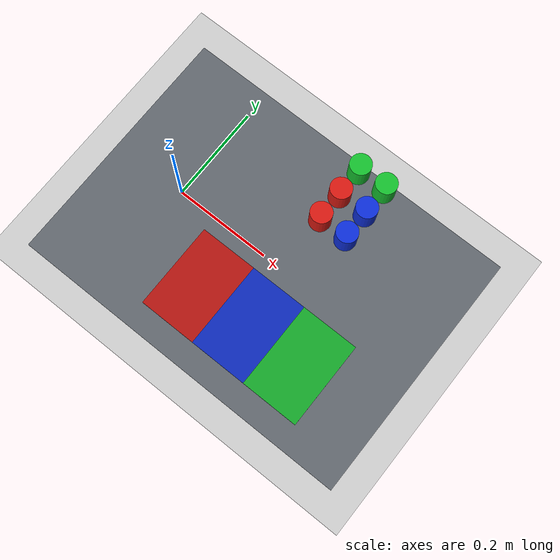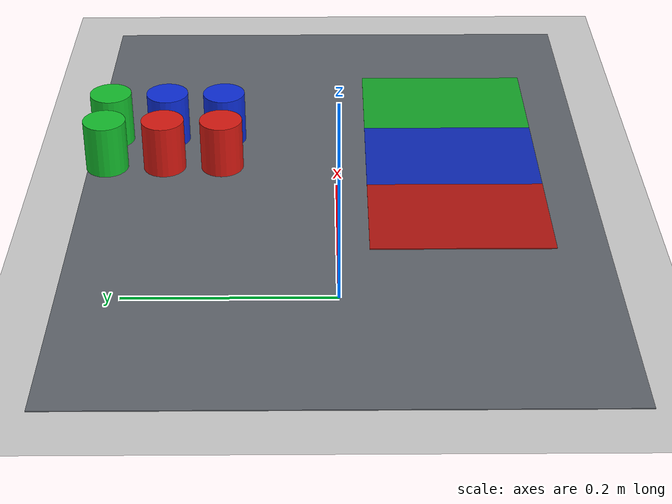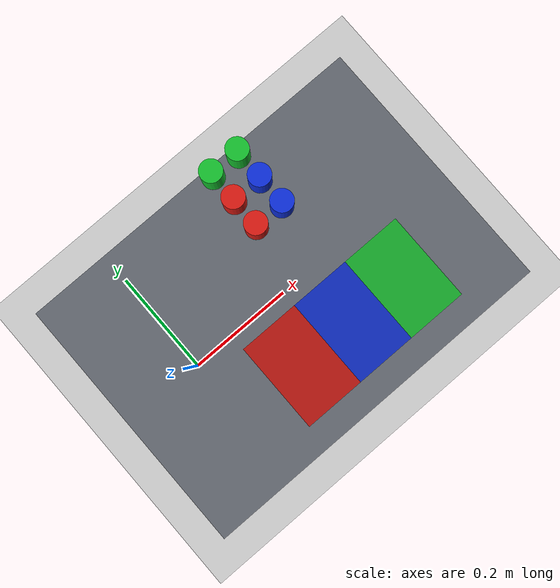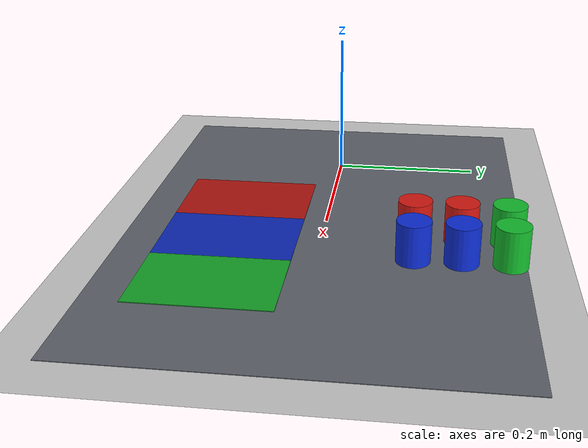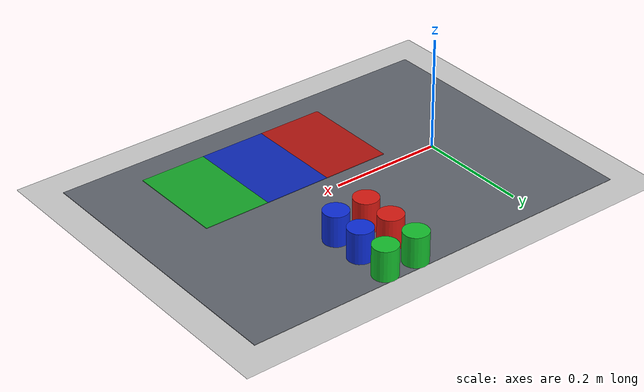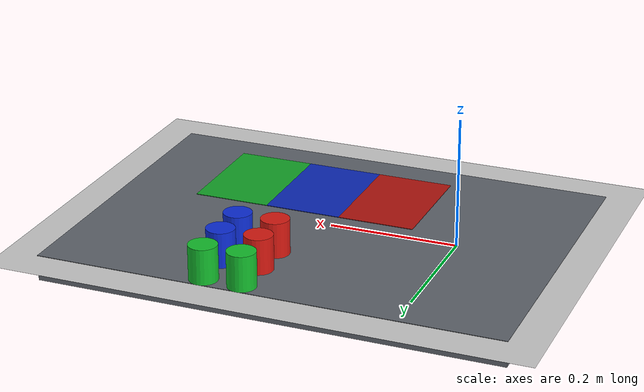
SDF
<?xml version="1.0" ?>
<sdf version="1.6">
  <world name="sorting_desktop_world">
    <physics name="sorting_physics" type="ode">
      <max_step_size>0.001</max_step_size>
      <real_time_update_rate>1000</real_time_update_rate>
      <ode>
        <solver><type>quick</type><iters>100</iters><sor>1.3</sor></solver>
        <constraints><cfm>0.0</cfm><erp>0.2</erp><contact_max_correcting_vel>0.1</contact_max_correcting_vel><contact_surface_layer>0.001</contact_surface_layer></constraints>
      </ode>
    </physics>

    <plugin name="gazebo_ros_state" filename="libgazebo_ros_state.so">
      <ros><namespace>/gazebo</namespace></ros>
      <update_rate>30.0</update_rate>
    </plugin>
    <include><uri>model://sun</uri></include>
    <include><uri>model://ground_plane</uri></include>

    <model name="sorting_table">
      <static>true</static>
      <pose>0.20 0.00 -0.02 0 0 0</pose>
      <link name="table_link">
        <visual name="table_visual">
          <geometry><box><size>0.72 0.52 0.04</size></box></geometry>
          <material><ambient>0.38 0.40 0.43 1</ambient><diffuse>0.38 0.40 0.43 1</diffuse></material>
        </visual>
        <collision name="table_collision"><geometry><box><size>0.72 0.52 0.04</size></box></geometry></collision>
      </link>
    </model>

    <!-- Colored destination pads. They are deliberately simple, solid pads so the first
         experiment can validate arm motion before adding bin-wall collision geometry. -->
    <model name="red_sort_bin">
      <static>true</static><pose>0.14 -0.12 0 0 0 0</pose>
      <link name="bin_link">
        <visual name="bin_visual"><geometry><box><size>0.12 0.18 0.002</size></box></geometry><material><ambient>0.70 0.08 0.06 1</ambient><diffuse>0.70 0.08 0.06 1</diffuse></material></visual>
        <collision name="bin_collision"><geometry><box><size>0.12 0.18 0.002</size></box></geometry></collision>
      </link>
    </model>
    <model name="blue_sort_bin">
      <static>true</static><pose>0.26 -0.12 0 0 0 0</pose>
      <link name="bin_link">
        <visual name="bin_visual"><geometry><box><size>0.12 0.18 0.002</size></box></geometry><material><ambient>0.05 0.16 0.72 1</ambient><diffuse>0.05 0.16 0.72 1</diffuse></material></visual>
        <collision name="bin_collision"><geometry><box><size>0.12 0.18 0.002</size></box></geometry></collision>
      </link>
    </model>
    <model name="green_sort_bin">
      <static>true</static><pose>0.38 -0.12 0 0 0 0</pose>
      <link name="bin_link">
        <visual name="bin_visual"><geometry><box><size>0.12 0.18 0.002</size></box></geometry><material><ambient>0.08 0.65 0.16 1</ambient><diffuse>0.08 0.65 0.16 1</diffuse></material></visual>
        <collision name="bin_collision"><geometry><box><size>0.12 0.18 0.002</size></box></geometry></collision>
      </link>
    </model>

    <!-- Six-object pickup grid: the first four calibrated positions plus two reachable green positions. -->
    <model name="object_red_1"><static>false</static><pose>0.24 0.12 0.0275 0 0 0</pose>
      <link name="object_link"><kinematic>true</kinematic><gravity>false</gravity><inertial><mass>0.04</mass><inertia><ixx>0.00002</ixx><iyy>0.00002</iyy><izz>0.00002</izz></inertia></inertial>
        <visual name="object_visual"><geometry><cylinder><radius>0.022</radius><length>0.055</length></cylinder></geometry><material><ambient>0.85 0.10 0.07 1</ambient><diffuse>0.85 0.10 0.07 1</diffuse></material></visual>
        <collision name="object_collision"><geometry><cylinder><radius>0.022</radius><length>0.055</length></cylinder></geometry><surface><friction><ode><mu>2.0</mu><mu2>2.0</mu2></ode></friction><contact><ode><kp>1000000</kp><kd>10</kd><max_vel>0.05</max_vel><min_depth>0.0005</min_depth></ode></contact></surface></collision>
      </link>
      <plugin name="sorting_class" filename="libgazebo_ros_p3d.so"><ros><namespace>/sorting/object_red_1</namespace></ros><body_name>object_link</body_name><frame_name>world</frame_name><topic_name>pose</topic_name><update_rate>10</update_rate></plugin>
    </model>
    <model name="object_blue_1"><static>false</static><pose>0.30 0.12 0.0275 0 0 0</pose>
      <link name="object_link"><kinematic>true</kinematic><gravity>false</gravity><inertial><mass>0.04</mass><inertia><ixx>0.00002</ixx><iyy>0.00002</iyy><izz>0.00002</izz></inertia></inertial>
        <visual name="object_visual"><geometry><cylinder><radius>0.022</radius><length>0.055</length></cylinder></geometry><material><ambient>0.05 0.18 0.85 1</ambient><diffuse>0.05 0.18 0.85 1</diffuse></material></visual>
        <collision name="object_collision"><geometry><cylinder><radius>0.022</radius><length>0.055</length></cylinder></geometry><surface><friction><ode><mu>2.0</mu><mu2>2.0</mu2></ode></friction></surface></collision>
      </link>
    </model>
    <model name="object_red_3"><static>false</static><pose>0.24 0.18 0.0275 0 0 0</pose>
      <link name="object_link"><kinematic>true</kinematic><gravity>false</gravity><inertial><mass>0.04</mass><inertia><ixx>0.00002</ixx><iyy>0.00002</iyy><izz>0.00002</izz></inertia></inertial><visual name="object_visual"><geometry><cylinder><radius>0.022</radius><length>0.055</length></cylinder></geometry><material><ambient>0.85 0.10 0.07 1</ambient><diffuse>0.85 0.10 0.07 1</diffuse></material></visual><collision name="object_collision"><geometry><cylinder><radius>0.022</radius><length>0.055</length></cylinder></geometry></collision></link>
    </model>
    <model name="object_blue_2"><static>false</static><pose>0.30 0.18 0.0275 0 0 0</pose>
      <link name="object_link"><kinematic>true</kinematic><gravity>false</gravity><inertial><mass>0.04</mass><inertia><ixx>0.00002</ixx><iyy>0.00002</iyy><izz>0.00002</izz></inertia></inertial><visual name="object_visual"><geometry><cylinder><radius>0.022</radius><length>0.055</length></cylinder></geometry><material><ambient>0.05 0.18 0.85 1</ambient><diffuse>0.05 0.18 0.85 1</diffuse></material></visual><collision name="object_collision"><geometry><cylinder><radius>0.022</radius><length>0.055</length></cylinder></geometry></collision></link>
    </model>
    <!-- Two additional green objects use the reachable third pickup column. -->
    <model name="object_green_1"><static>false</static><pose>0.24 0.24 0.0275 0 0 0</pose>
      <link name="object_link"><kinematic>true</kinematic><gravity>false</gravity><inertial><mass>0.04</mass><inertia><ixx>0.00002</ixx><iyy>0.00002</iyy><izz>0.00002</izz></inertia></inertial>
        <visual name="object_visual"><geometry><cylinder><radius>0.022</radius><length>0.055</length></cylinder></geometry><material><ambient>0.08 0.75 0.18 1</ambient><diffuse>0.08 0.75 0.18 1</diffuse></material></visual>
        <collision name="object_collision"><geometry><cylinder><radius>0.022</radius><length>0.055</length></cylinder></geometry><surface><friction><ode><mu>2.0</mu><mu2>2.0</mu2></ode></friction></surface></collision>
      </link>
    </model>
    <model name="object_green_2"><static>false</static><pose>0.30 0.24 0.0275 0 0 0</pose>
      <link name="object_link"><kinematic>true</kinematic><gravity>false</gravity><inertial><mass>0.04</mass><inertia><ixx>0.00002</ixx><iyy>0.00002</iyy><izz>0.00002</izz></inertia></inertial>
        <visual name="object_visual"><geometry><cylinder><radius>0.022</radius><length>0.055</length></cylinder></geometry><material><ambient>0.08 0.75 0.18 1</ambient><diffuse>0.08 0.75 0.18 1</diffuse></material></visual>
        <collision name="object_collision"><geometry><cylinder><radius>0.022</radius><length>0.055</length></cylinder></geometry><surface><friction><ode><mu>2.0</mu><mu2>2.0</mu2></ode></friction></surface></collision>
      </link>
    </model>

    <model name="sorting_camera">
      <static>true</static><pose>0.20 0.00 0.90 0 1.5708 0</pose>
      <link name="camera_link">
        <sensor name="overhead_camera" type="camera">
          <always_on>true</always_on><update_rate>15</update_rate><visualize>true</visualize>
          <camera><horizontal_fov>1.047</horizontal_fov><image><width>640</width><height>480</height><format>R8G8B8</format></image><clip><near>0.02</near><far>3.0</far></clip></camera>
          <plugin name="sorting_camera_ros" filename="libgazebo_ros_camera.so"><ros><namespace>/sorting_camera</namespace><argument>use_sim_time:=true</argument></ros><camera_name>overhead</camera_name><frame_name>sorting_camera_link</frame_name><image_topic_name>image_raw</image_topic_name><camera_info_topic_name>camera_info</camera_info_topic_name></plugin>
        </sensor>
      </link>
    </model>
  </world>
</sdf>
